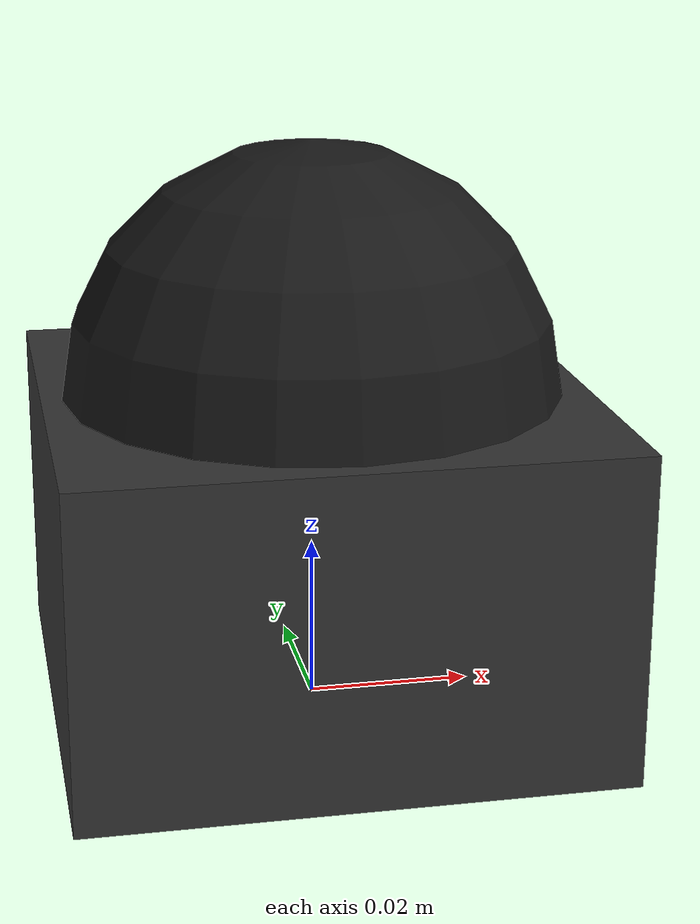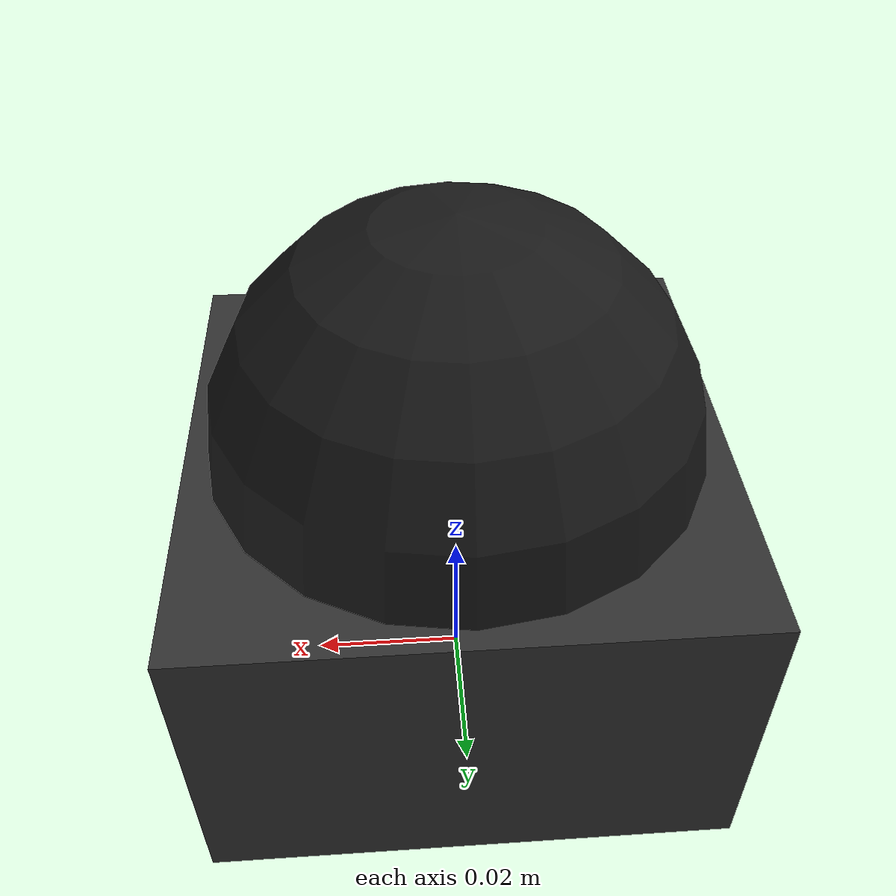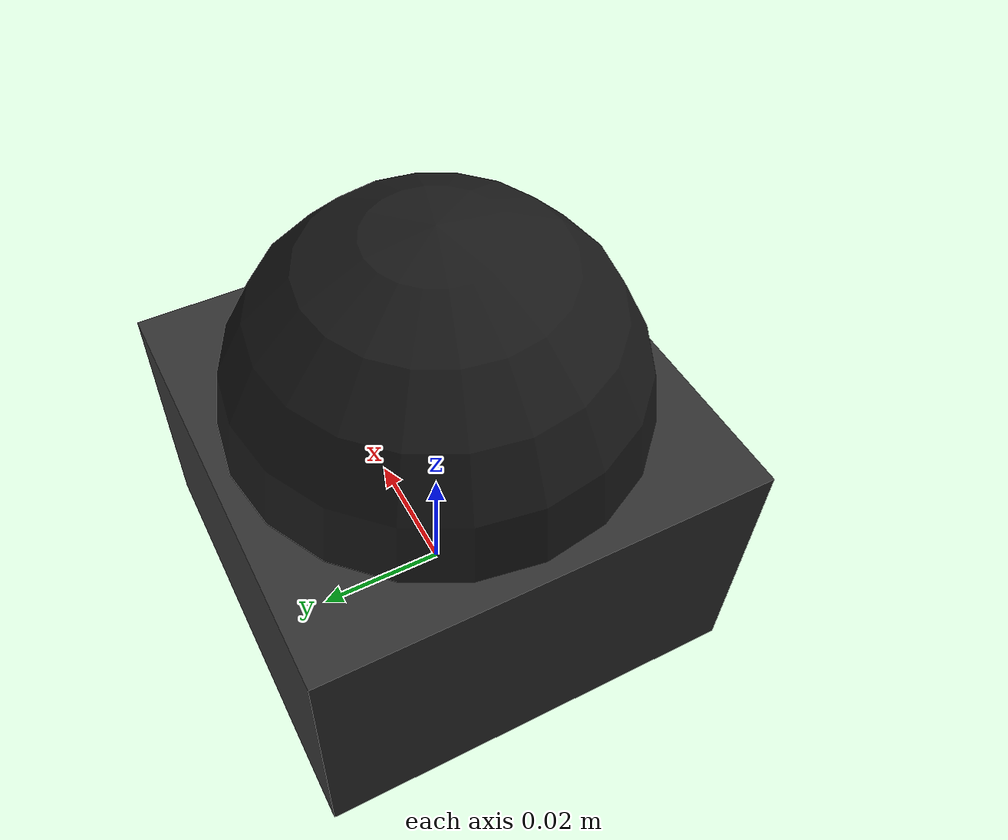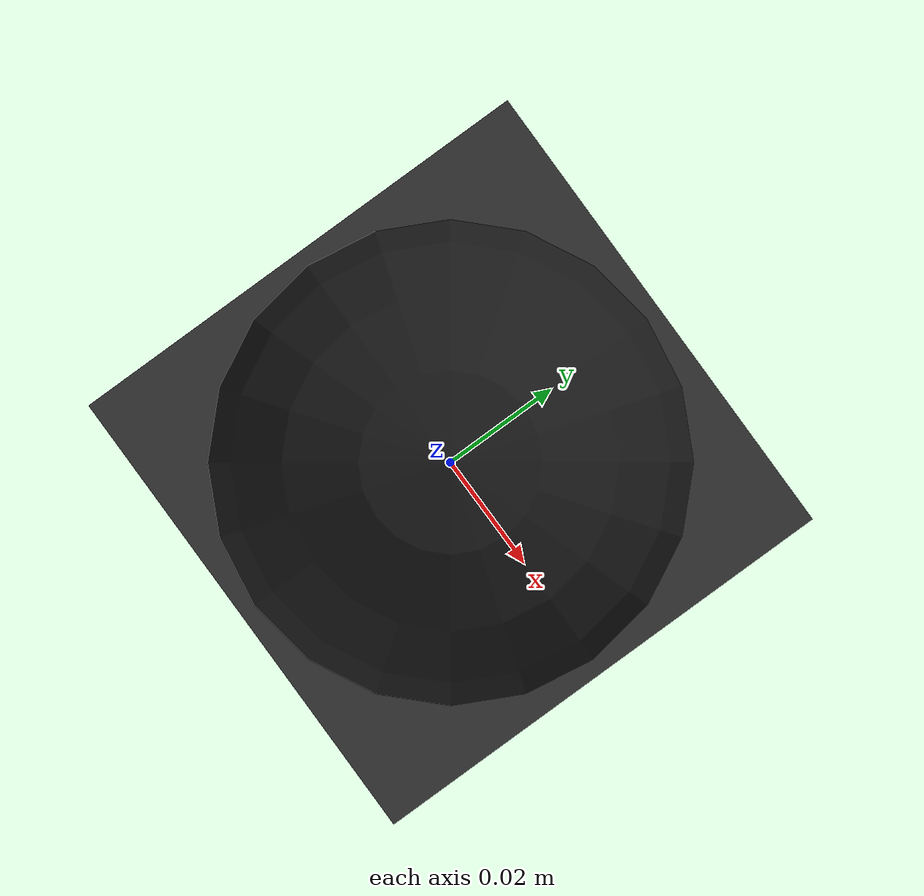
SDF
<?xml version="1.0" encoding="UTF-8"?>
<sdf version='1.9'>
  <model name='mid360'>
    <pose>0 0 0 0 0 0</pose>
    <self_collide>false</self_collide>
    <static>false</static>

    <link name="mid360_link">
      <inertial>
        <pose>0 0 0.03 0 0 0</pose>
        <mass>0.265</mass>
        <inertia>
          <ixx>0.0002</ixx>
          <ixy>0</ixy>
          <ixz>0</ixz>
          <iyy>0.0002</iyy>
          <iyz>0</iyz>
          <izz>0.0002</izz>
        </inertia>
      </inertial>

      <!-- Base: 正方盒 65mm x 65mm x 40mm -->
      <visual name="mid360_base_visual">
        <pose>0 0 0.02 0 0 0</pose>
        <geometry>
          <box>
            <size>0.065 0.065 0.04</size>
          </box>
        </geometry>
        <material>
          <ambient>0.1 0.1 0.1 1</ambient>
          <diffuse>0.2 0.2 0.2 1</diffuse>
        </material>
      </visual>

      <!-- Top: 半圆形 (用半球近似) -->
      <visual name="mid360_dome_visual">
        <pose>0 0 0.04 0 0 0</pose>
        <geometry>
          <sphere>
            <radius>0.03</radius>
          </sphere>
        </geometry>
        <material>
          <ambient>0.05 0.05 0.05 1</ambient>
          <diffuse>0.1 0.1 0.1 1</diffuse>
        </material>
      </visual>

      <!-- Collision: 简化的盒子 -->
      <collision name="mid360_collision">
        <pose>0 0 0.03 0 0 0</pose>
        <geometry>
          <box>
            <size>0.065 0.065 0.06</size>
          </box>
        </geometry>
      </collision>

      <!-- GPU LiDAR Sensor: 模拟 Mid-360 -->
      <!-- 官方规格: 200,000点/秒, 10Hz = 20,000点/帧 -->
      <!-- 水平360°, 垂直-7°~52° (59°), 探测0.1-40m -->
      <sensor name="mid360_lidar" type="gpu_lidar">
        <pose>0 0 0.05 0 0 0</pose>
        <topic>livox/lidar</topic>
        <update_rate>10</update_rate>
        <always_on>true</always_on>
        <visualize>true</visualize>
        <ray>
          <scan>
            <horizontal>
              <samples>400</samples>
              <resolution>1</resolution>
              <min_angle>-3.14159</min_angle>
              <max_angle>3.14159</max_angle>
            </horizontal>
            <vertical>
              <samples>50</samples>
              <resolution>1</resolution>
              <min_angle>-0.122173</min_angle>
              <max_angle>0.907571</max_angle>
            </vertical>
          </scan>
          <range>
            <min>0.1</min>
            <max>40.0</max>
            <resolution>0.01</resolution>
          </range>
          <noise>
            <type>gaussian</type>
            <mean>0.0</mean>
            <stddev>0.02</stddev>
          </noise>
        </ray>
      </sensor>

      <!-- IMU (Mid-360 内建 IMU) -->
      <sensor name="mid360_imu" type="imu">
        <pose>0 0 0.03 0 0 0</pose>
        <topic>livox/imu</topic>
        <update_rate>200</update_rate>
        <always_on>true</always_on>
        <visualize>false</visualize>
        <imu>
          <angular_velocity>
            <x><noise type="gaussian"><mean>0.0</mean><stddev>0.0002</stddev></noise></x>
            <y><noise type="gaussian"><mean>0.0</mean><stddev>0.0002</stddev></noise></y>
            <z><noise type="gaussian"><mean>0.0</mean><stddev>0.0002</stddev></noise></z>
          </angular_velocity>
          <linear_acceleration>
            <x><noise type="gaussian"><mean>0.0</mean><stddev>0.017</stddev></noise></x>
            <y><noise type="gaussian"><mean>0.0</mean><stddev>0.017</stddev></noise></y>
            <z><noise type="gaussian"><mean>0.0</mean><stddev>0.017</stddev></noise></z>
          </linear_acceleration>
        </imu>
      </sensor>

    </link>
  </model>
</sdf>
